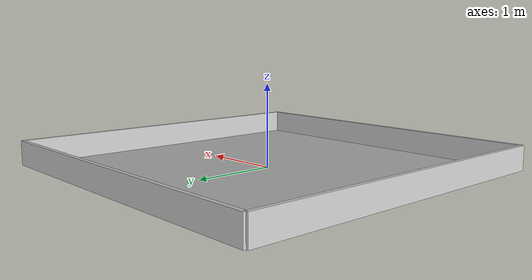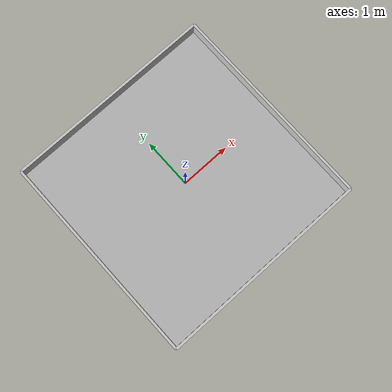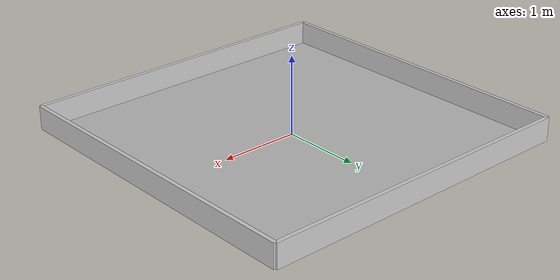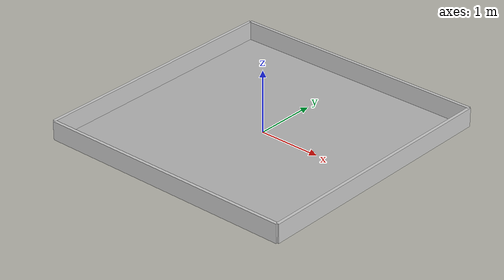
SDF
<?xml version="1.0"?>
<sdf version="1.6">
  <model name="map_arena">
    <static>true</static>
    <!-- Ground plane with texture 4.2x4.2m -->
    <link name="ground">
      <pose>0 0 0 0 0 0</pose>
      <collision name="ground_collision">
        <geometry>
          <plane>
            <normal>0 0 1</normal>
            <size>4.2 4.2</size>
          </plane>
        </geometry>
        <surface>
          <friction>
            <ode>
              <mu>1.0</mu>
              <mu2>1.0</mu2>
            </ode>
          </friction>
        </surface>
      </collision>
      <visual name="ground_visual">
        <geometry>
          <plane>
            <normal>0 0 1</normal>
            <size>4.2 4.2</size>
          </plane>
        </geometry>
        <material>
          <script>
            <uri>model://map_arena/materials/scripts</uri>
            <uri>model://map_arena/materials/textures</uri>
            <name>MapArena/MapFloor</name>
          </script>
        </material>
      </visual>
    </link>

    <!-- Walls around the edges -->
    <!-- default: thickness 0.05m, height 0.30m -->
    <link name="wall_north">
      <pose>0 2.1 0.15 0 0 0</pose>
      <collision name="col">
        <geometry>
          <box>
            <size>4.2 0.05 0.30</size>
          </box>
        </geometry>
      </collision>
      <visual name="vis">
        <geometry>
          <box>
            <size>4.2 0.05 0.30</size>
          </box>
        </geometry>
        <material>
          <ambient>0.8 0.8 0.8 1</ambient>
          <diffuse>0.8 0.8 0.8 1</diffuse>
        </material>
      </visual>
    </link>

    <link name="wall_south">
      <pose>0 -2.1 0.15 0 0 0</pose>
      <collision name="col">
        <geometry>
          <box>
            <size>4.2 0.05 0.30</size>
          </box>
        </geometry>
      </collision>
      <visual name="vis">
        <geometry>
          <box>
            <size>4.2 0.05 0.30</size>
          </box>
        </geometry>
        <material>
          <ambient>0.8 0.8 0.8 1</ambient>
          <diffuse>0.8 0.8 0.8 1</diffuse>
        </material>
      </visual>
    </link>

    <link name="wall_east">
      <pose>2.1 0 0.15 0 0 0</pose>
      <collision name="col">
        <geometry>
          <box>
            <size>0.05 4.2 0.30</size>
          </box>
        </geometry>
      </collision>
      <visual name="vis">
        <geometry>
          <box>
            <size>0.05 4.2 0.30</size>
          </box>
        </geometry>
        <material>
          <ambient>0.8 0.8 0.8 1</ambient>
          <diffuse>0.8 0.8 0.8 1</diffuse>
        </material>
      </visual>
    </link>

    <link name="wall_west">
      <pose>-2.1 0 0.15 0 0 0</pose>
      <collision name="col">
        <geometry>
          <box>
            <size>0.05 4.2 0.30</size>
          </box>
        </geometry>
      </collision>
      <visual name="vis">
        <geometry>
          <box>
            <size>0.05 4.2 0.30</size>
          </box>
        </geometry>
        <material>
          <ambient>0.8 0.8 0.8 1</ambient>
          <diffuse>0.8 0.8 0.8 1</diffuse>
        </material>
      </visual>
    </link>
  </model>
</sdf>
